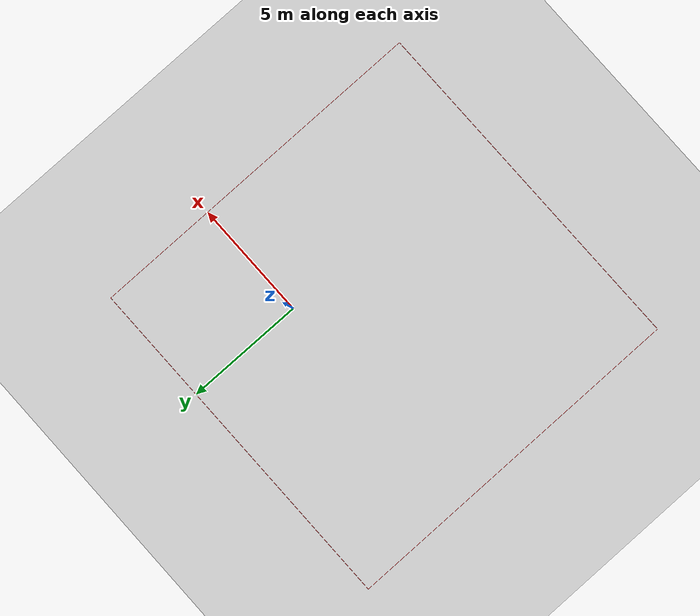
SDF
<?xml version="1.0" ?>
<sdf version="1.6">
  <world name="empty">
    <physics name="1ms" type="ignored">
      <max_step_size>0.001</max_step_size>
      <real_time_factor>1.0</real_time_factor>
    </physics>
    <plugin
      filename="gz-sim-physics-system"
      name="gz::sim::systems::Physics">
    </plugin>
    <plugin
      filename="gz-sim-user-commands-system"
      name="gz::sim::systems::UserCommands">
    </plugin>
    <plugin
      filename="gz-sim-scene-broadcaster-system"
      name="gz::sim::systems::SceneBroadcaster">
    </plugin>
    <plugin
      filename="gz-sim-contact-system"
      name="gz::sim::systems::Contact">
    </plugin>
    <plugin
      filename="gz-sim-navsat-system"
      name="gz::sim::systems::NavSat">
    </plugin>

    <light type="directional" name="sun">
      <cast_shadows>true</cast_shadows>
      <pose>0 0 10 0 0 0</pose>
      <diffuse>0.8 0.8 0.8 1</diffuse>
      <specular>0.2 0.2 0.2 1</specular>
      <attenuation>
        <range>1000</range>
        <constant>0.9</constant>
        <linear>0.01</linear>
        <quadratic>0.001</quadratic>
      </attenuation>
      <direction>-0.5 0.1 -0.9</direction>
    </light>

    <spherical_coordinates>
      <surface_model>EARTH_WGS84</surface_model>
      <world_frame_orientation>ENU</world_frame_orientation>
      <latitude_deg>-31.980327</latitude_deg>
      <longitude_deg>115.817317</longitude_deg>
      <elevation>0</elevation>
      <heading_deg>0</heading_deg>
    </spherical_coordinates>

    <model name="ground_plane">
      <static>true</static>
      <link name="link">
        <collision name="collision">
          <geometry>
            <plane>
              <normal>0 0 1</normal>
              <size>100 100</size>
            </plane>
          </geometry>
        </collision>
        <visual name="visual">
          <geometry>
            <plane>
              <normal>0 0 1</normal>
              <size>100 100</size>
            </plane>
          </geometry>
          <material>
            <ambient>0.8 0.8 0.8 1</ambient>
            <diffuse>0.8 0.8 0.8 1</diffuse>
            <specular>0.8 0.8 0.8 1</specular>
            <texture>
              <uri>file://media/materials/textures/grass.png</uri>
            </texture>
          </material>
        </visual>
      </link>
    </model>

    <model name="boundary_line_1">
      <pose>-2.5 -10 0.05 0 0 0</pose>
      <static>true</static>
      <link name="link">
        <visual name="visual">
          <geometry>
            <box>
              <size>15.0 0.01 0.01</size>
            </box>
          </geometry>
          <material>
            <ambient>1 0 0 1</ambient>
            <diffuse>1 0 0 1</diffuse>
          </material>
        </visual>
        </link>
    </model>

    <model name="boundary_line_2">
      <pose>-2.5 5 0.05 0 0 0</pose>
      <static>true</static>
      <link name="link">
        <visual name="visual">
          <geometry>
            <box>
              <size>15.0 0.01 0.01</size>
            </box>
          </geometry>
          <material>
            <ambient>1 0 0 1</ambient>
            <diffuse>1 0 0 1</diffuse>
          </material>
        </visual>
        </link>
    </model>

    <model name="boundary_line_3">
      <pose>-10 -2.5 0.05 0 0 0</pose>
      <static>true</static>
      <link name="link">
        <visual name="visual">
          <geometry>
            <box>
              <size>0.01 15.0 0.01</size>
            </box>
          </geometry>
          <material>
            <ambient>1 0 0 1</ambient>
            <diffuse>1 0 0 1</diffuse>
          </material>
        </visual>
        </link>
    </model>

    <model name="boundary_line_4">
      <pose>5 -2.5 0.05 0 0 0</pose>
      <static>true</static>
      <link name="link">
        <visual name="visual">
          <geometry>
            <box>
              <size>0.01 15.0 0.01</size>
            </box>
          </geometry>
          <material>
            <ambient>1 0 0 1</ambient>
            <diffuse>1 0 0 1</diffuse>
          </material>
        </visual>
        </link>
    </model>

  </world>
</sdf>
